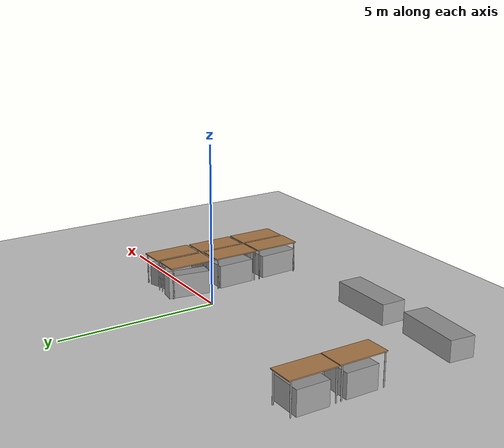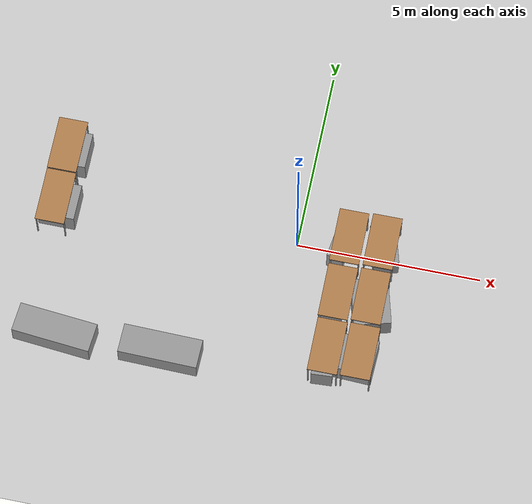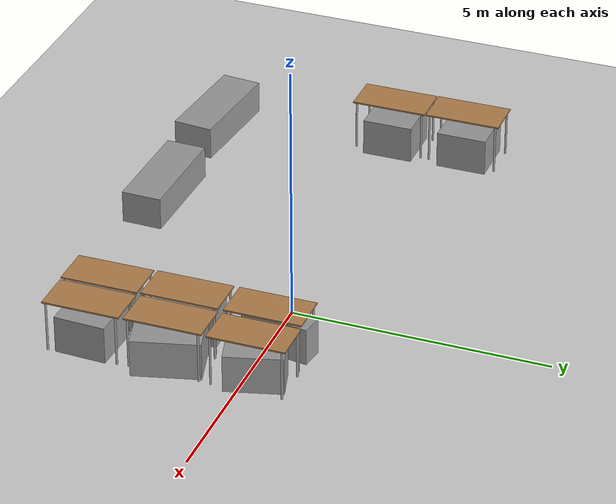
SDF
<sdf version="1.6">
 <world name="default">
  <model name="ground_plane">
   <static>1</static>
   <link name="link">
    <collision name="collision">
     <geometry><plane><normal>0 0 1</normal><size>100 100</size></plane></geometry>
     <surface><friction><ode><mu>100</mu><mu2>50</mu2></ode></friction></surface>
    </collision>
    <visual name="visual">
     <cast_shadows>0</cast_shadows>
     <geometry><plane><normal>0 0 1</normal><size>100 100</size></plane></geometry>
     <material>
      <script><uri>file://media/materials/scripts/gazebo.material</uri><name>Gazebo/Grey</name></script>
     </material>
    </visual>
   </link>
  </model>
  <model name="table">
   <static>1</static>
   <link name="link">
    <collision name="surface">
     <pose>0 0 1 0 -0 0</pose>
     <geometry><box><size>1.5 0.8 0.03</size></box></geometry>
     <surface><friction><ode><mu>0.6</mu><mu2>0.6</mu2></ode></friction></surface>
    </collision>
    <visual name="visual1">
     <pose>0 0 1 0 -0 0</pose>
     <geometry><box><size>1.5 0.8 0.03</size></box></geometry>
     <material>
      <script><uri>file://media/materials/scripts/gazebo.material</uri><name>Gazebo/Wood</name></script>
     </material>
    </visual>
    <collision name="front_left_leg">
     <pose>0.68 0.38 0.5 0 -0 0</pose>
     <geometry><cylinder><radius>0.02</radius><length>1</length></cylinder></geometry>
    </collision>
    <visual name="front_left_leg">
     <pose>0.68 0.38 0.5 0 -0 0</pose>
     <geometry><cylinder><radius>0.02</radius><length>1</length></cylinder></geometry>
     <material>
      <script><uri>file://media/materials/scripts/gazebo.material</uri><name>Gazebo/Grey</name></script>
     </material>
    </visual>
    <collision name="front_right_leg">
     <pose>0.68 -0.38 0.5 0 -0 0</pose>
     <geometry><cylinder><radius>0.02</radius><length>1</length></cylinder></geometry>
    </collision>
    <visual name="front_right_leg">
     <pose>0.68 -0.38 0.5 0 -0 0</pose>
     <geometry><cylinder><radius>0.02</radius><length>1</length></cylinder></geometry>
     <material>
      <script><uri>file://media/materials/scripts/gazebo.material</uri><name>Gazebo/Grey</name></script>
     </material>
    </visual>
    <collision name="back_right_leg">
     <pose>-0.68 -0.38 0.5 0 -0 0</pose>
     <geometry><cylinder><radius>0.02</radius><length>1</length></cylinder></geometry>
    </collision>
    <visual name="back_right_leg">
     <pose>-0.68 -0.38 0.5 0 -0 0</pose>
     <geometry><cylinder><radius>0.02</radius><length>1</length></cylinder></geometry>
     <material>
      <script><uri>file://media/materials/scripts/gazebo.material</uri><name>Gazebo/Grey</name></script>
     </material>
    </visual>
    <collision name="back_left_leg">
     <pose>-0.68 0.38 0.5 0 -0 0</pose>
     <geometry><cylinder><radius>0.02</radius><length>1</length></cylinder></geometry>
    </collision>
    <visual name="back_left_leg">
     <pose>-0.68 0.38 0.5 0 -0 0</pose>
     <geometry><cylinder><radius>0.02</radius><length>1</length></cylinder></geometry>
     <material>
      <script><uri>file://media/materials/scripts/gazebo.material</uri><name>Gazebo/Grey</name></script>
     </material>
    </visual>
   </link>
   <pose>2.29662 -3.01648 0 0 0 -1.56663</pose>
  </model>
  <model name="table_clone">
   <static>1</static>
   <link name="link">
    <collision name="surface">
     <pose>0 0 1 0 -0 0</pose>
     <geometry><box><size>1.5 0.8 0.03</size></box></geometry>
     <surface><friction><ode><mu>0.6</mu><mu2>0.6</mu2></ode></friction></surface>
    </collision>
    <visual name="visual1">
     <pose>0 0 1 0 -0 0</pose>
     <geometry><box><size>1.5 0.8 0.03</size></box></geometry>
     <material>
      <script><uri>file://media/materials/scripts/gazebo.material</uri><name>Gazebo/Wood</name></script>
     </material>
    </visual>
    <collision name="front_left_leg">
     <pose>0.68 0.38 0.5 0 -0 0</pose>
     <geometry><cylinder><radius>0.02</radius><length>1</length></cylinder></geometry>
    </collision>
    <visual name="front_left_leg">
     <pose>0.68 0.38 0.5 0 -0 0</pose>
     <geometry><cylinder><radius>0.02</radius><length>1</length></cylinder></geometry>
     <material>
      <script><uri>file://media/materials/scripts/gazebo.material</uri><name>Gazebo/Grey</name></script>
     </material>
    </visual>
    <collision name="front_right_leg">
     <pose>0.68 -0.38 0.5 0 -0 0</pose>
     <geometry><cylinder><radius>0.02</radius><length>1</length></cylinder></geometry>
    </collision>
    <visual name="front_right_leg">
     <pose>0.68 -0.38 0.5 0 -0 0</pose>
     <geometry><cylinder><radius>0.02</radius><length>1</length></cylinder></geometry>
     <material>
      <script><uri>file://media/materials/scripts/gazebo.material</uri><name>Gazebo/Grey</name></script>
     </material>
    </visual>
    <collision name="back_right_leg">
     <pose>-0.68 -0.38 0.5 0 -0 0</pose>
     <geometry><cylinder><radius>0.02</radius><length>1</length></cylinder></geometry>
    </collision>
    <visual name="back_right_leg">
     <pose>-0.68 -0.38 0.5 0 -0 0</pose>
     <geometry><cylinder><radius>0.02</radius><length>1</length></cylinder></geometry>
     <material>
      <script><uri>file://media/materials/scripts/gazebo.material</uri><name>Gazebo/Grey</name></script>
     </material>
    </visual>
    <collision name="back_left_leg">
     <pose>-0.68 0.38 0.5 0 -0 0</pose>
     <geometry><cylinder><radius>0.02</radius><length>1</length></cylinder></geometry>
    </collision>
    <visual name="back_left_leg">
     <pose>-0.68 0.38 0.5 0 -0 0</pose>
     <geometry><cylinder><radius>0.02</radius><length>1</length></cylinder></geometry>
     <material>
      <script><uri>file://media/materials/scripts/gazebo.material</uri><name>Gazebo/Grey</name></script>
     </material>
    </visual>
   </link>
   <pose>2.27339 -1.43135 0 0 0 -1.56663</pose>
  </model>
  <model name="table_clone_0">
   <static>1</static>
   <link name="link">
    <collision name="surface">
     <pose>0 0 1 0 -0 0</pose>
     <geometry><box><size>1.5 0.8 0.03</size></box></geometry>
     <surface><friction><ode><mu>0.6</mu><mu2>0.6</mu2></ode></friction></surface>
    </collision>
    <visual name="visual1">
     <pose>0 0 1 0 -0 0</pose>
     <geometry><box><size>1.5 0.8 0.03</size></box></geometry>
     <material>
      <script><uri>file://media/materials/scripts/gazebo.material</uri><name>Gazebo/Wood</name></script>
     </material>
    </visual>
    <collision name="front_left_leg">
     <pose>0.68 0.38 0.5 0 -0 0</pose>
     <geometry><cylinder><radius>0.02</radius><length>1</length></cylinder></geometry>
    </collision>
    <visual name="front_left_leg">
     <pose>0.68 0.38 0.5 0 -0 0</pose>
     <geometry><cylinder><radius>0.02</radius><length>1</length></cylinder></geometry>
     <material>
      <script><uri>file://media/materials/scripts/gazebo.material</uri><name>Gazebo/Grey</name></script>
     </material>
    </visual>
    <collision name="front_right_leg">
     <pose>0.68 -0.38 0.5 0 -0 0</pose>
     <geometry><cylinder><radius>0.02</radius><length>1</length></cylinder></geometry>
    </collision>
    <visual name="front_right_leg">
     <pose>0.68 -0.38 0.5 0 -0 0</pose>
     <geometry><cylinder><radius>0.02</radius><length>1</length></cylinder></geometry>
     <material>
      <script><uri>file://media/materials/scripts/gazebo.material</uri><name>Gazebo/Grey</name></script>
     </material>
    </visual>
    <collision name="back_right_leg">
     <pose>-0.68 -0.38 0.5 0 -0 0</pose>
     <geometry><cylinder><radius>0.02</radius><length>1</length></cylinder></geometry>
    </collision>
    <visual name="back_right_leg">
     <pose>-0.68 -0.38 0.5 0 -0 0</pose>
     <geometry><cylinder><radius>0.02</radius><length>1</length></cylinder></geometry>
     <material>
      <script><uri>file://media/materials/scripts/gazebo.material</uri><name>Gazebo/Grey</name></script>
     </material>
    </visual>
    <collision name="back_left_leg">
     <pose>-0.68 0.38 0.5 0 -0 0</pose>
     <geometry><cylinder><radius>0.02</radius><length>1</length></cylinder></geometry>
    </collision>
    <visual name="back_left_leg">
     <pose>-0.68 0.38 0.5 0 -0 0</pose>
     <geometry><cylinder><radius>0.02</radius><length>1</length></cylinder></geometry>
     <material>
      <script><uri>file://media/materials/scripts/gazebo.material</uri><name>Gazebo/Grey</name></script>
     </material>
    </visual>
   </link>
   <pose>2.28472 0.161965 0 0 0 -1.56663</pose>
  </model>
  <model name="table_clone_1">
   <static>1</static>
   <link name="link">
    <collision name="surface">
     <pose>0 0 1 0 -0 0</pose>
     <geometry><box><size>1.5 0.8 0.03</size></box></geometry>
     <surface><friction><ode><mu>0.6</mu><mu2>0.6</mu2></ode></friction></surface>
    </collision>
    <visual name="visual1">
     <pose>0 0 1 0 -0 0</pose>
     <geometry><box><size>1.5 0.8 0.03</size></box></geometry>
     <material>
      <script><uri>file://media/materials/scripts/gazebo.material</uri><name>Gazebo/Wood</name></script>
     </material>
    </visual>
    <collision name="front_left_leg">
     <pose>0.68 0.38 0.5 0 -0 0</pose>
     <geometry><cylinder><radius>0.02</radius><length>1</length></cylinder></geometry>
    </collision>
    <visual name="front_left_leg">
     <pose>0.68 0.38 0.5 0 -0 0</pose>
     <geometry><cylinder><radius>0.02</radius><length>1</length></cylinder></geometry>
     <material>
      <script><uri>file://media/materials/scripts/gazebo.material</uri><name>Gazebo/Grey</name></script>
     </material>
    </visual>
    <collision name="front_right_leg">
     <pose>0.68 -0.38 0.5 0 -0 0</pose>
     <geometry><cylinder><radius>0.02</radius><length>1</length></cylinder></geometry>
    </collision>
    <visual name="front_right_leg">
     <pose>0.68 -0.38 0.5 0 -0 0</pose>
     <geometry><cylinder><radius>0.02</radius><length>1</length></cylinder></geometry>
     <material>
      <script><uri>file://media/materials/scripts/gazebo.material</uri><name>Gazebo/Grey</name></script>
     </material>
    </visual>
    <collision name="back_right_leg">
     <pose>-0.68 -0.38 0.5 0 -0 0</pose>
     <geometry><cylinder><radius>0.02</radius><length>1</length></cylinder></geometry>
    </collision>
    <visual name="back_right_leg">
     <pose>-0.68 -0.38 0.5 0 -0 0</pose>
     <geometry><cylinder><radius>0.02</radius><length>1</length></cylinder></geometry>
     <material>
      <script><uri>file://media/materials/scripts/gazebo.material</uri><name>Gazebo/Grey</name></script>
     </material>
    </visual>
    <collision name="back_left_leg">
     <pose>-0.68 0.38 0.5 0 -0 0</pose>
     <geometry><cylinder><radius>0.02</radius><length>1</length></cylinder></geometry>
    </collision>
    <visual name="back_left_leg">
     <pose>-0.68 0.38 0.5 0 -0 0</pose>
     <geometry><cylinder><radius>0.02</radius><length>1</length></cylinder></geometry>
     <material>
      <script><uri>file://media/materials/scripts/gazebo.material</uri><name>Gazebo/Grey</name></script>
     </material>
    </visual>
   </link>
   <pose>1.41744 -3.04037 0 0 0 -1.56663</pose>
  </model>
  <model name="table_clone_2">
   <static>1</static>
   <link name="link">
    <collision name="surface">
     <pose>0 0 1 0 -0 0</pose>
     <geometry><box><size>1.5 0.8 0.03</size></box></geometry>
     <surface><friction><ode><mu>0.6</mu><mu2>0.6</mu2></ode></friction></surface>
    </collision>
    <visual name="visual1">
     <pose>0 0 1 0 -0 0</pose>
     <geometry><box><size>1.5 0.8 0.03</size></box></geometry>
     <material>
      <script><uri>file://media/materials/scripts/gazebo.material</uri><name>Gazebo/Wood</name></script>
     </material>
    </visual>
    <collision name="front_left_leg">
     <pose>0.68 0.38 0.5 0 -0 0</pose>
     <geometry><cylinder><radius>0.02</radius><length>1</length></cylinder></geometry>
    </collision>
    <visual name="front_left_leg">
     <pose>0.68 0.38 0.5 0 -0 0</pose>
     <geometry><cylinder><radius>0.02</radius><length>1</length></cylinder></geometry>
     <material>
      <script><uri>file://media/materials/scripts/gazebo.material</uri><name>Gazebo/Grey</name></script>
     </material>
    </visual>
    <collision name="front_right_leg">
     <pose>0.68 -0.38 0.5 0 -0 0</pose>
     <geometry><cylinder><radius>0.02</radius><length>1</length></cylinder></geometry>
    </collision>
    <visual name="front_right_leg">
     <pose>0.68 -0.38 0.5 0 -0 0</pose>
     <geometry><cylinder><radius>0.02</radius><length>1</length></cylinder></geometry>
     <material>
      <script><uri>file://media/materials/scripts/gazebo.material</uri><name>Gazebo/Grey</name></script>
     </material>
    </visual>
    <collision name="back_right_leg">
     <pose>-0.68 -0.38 0.5 0 -0 0</pose>
     <geometry><cylinder><radius>0.02</radius><length>1</length></cylinder></geometry>
    </collision>
    <visual name="back_right_leg">
     <pose>-0.68 -0.38 0.5 0 -0 0</pose>
     <geometry><cylinder><radius>0.02</radius><length>1</length></cylinder></geometry>
     <material>
      <script><uri>file://media/materials/scripts/gazebo.material</uri><name>Gazebo/Grey</name></script>
     </material>
    </visual>
    <collision name="back_left_leg">
     <pose>-0.68 0.38 0.5 0 -0 0</pose>
     <geometry><cylinder><radius>0.02</radius><length>1</length></cylinder></geometry>
    </collision>
    <visual name="back_left_leg">
     <pose>-0.68 0.38 0.5 0 -0 0</pose>
     <geometry><cylinder><radius>0.02</radius><length>1</length></cylinder></geometry>
     <material>
      <script><uri>file://media/materials/scripts/gazebo.material</uri><name>Gazebo/Grey</name></script>
     </material>
    </visual>
   </link>
   <pose>1.39274 -1.47675 0 0 0 -1.56663</pose>
  </model>
  <model name="table_clone_3">
   <static>1</static>
   <link name="link">
    <collision name="surface">
     <pose>0 0 1 0 -0 0</pose>
     <geometry><box><size>1.5 0.8 0.03</size></box></geometry>
     <surface><friction><ode><mu>0.6</mu><mu2>0.6</mu2></ode></friction></surface>
    </collision>
    <visual name="visual1">
     <pose>0 0 1 0 -0 0</pose>
     <geometry><box><size>1.5 0.8 0.03</size></box></geometry>
     <material>
      <script><uri>file://media/materials/scripts/gazebo.material</uri><name>Gazebo/Wood</name></script>
     </material>
    </visual>
    <collision name="front_left_leg">
     <pose>0.68 0.38 0.5 0 -0 0</pose>
     <geometry><cylinder><radius>0.02</radius><length>1</length></cylinder></geometry>
    </collision>
    <visual name="front_left_leg">
     <pose>0.68 0.38 0.5 0 -0 0</pose>
     <geometry><cylinder><radius>0.02</radius><length>1</length></cylinder></geometry>
     <material>
      <script><uri>file://media/materials/scripts/gazebo.material</uri><name>Gazebo/Grey</name></script>
     </material>
    </visual>
    <collision name="front_right_leg">
     <pose>0.68 -0.38 0.5 0 -0 0</pose>
     <geometry><cylinder><radius>0.02</radius><length>1</length></cylinder></geometry>
    </collision>
    <visual name="front_right_leg">
     <pose>0.68 -0.38 0.5 0 -0 0</pose>
     <geometry><cylinder><radius>0.02</radius><length>1</length></cylinder></geometry>
     <material>
      <script><uri>file://media/materials/scripts/gazebo.material</uri><name>Gazebo/Grey</name></script>
     </material>
    </visual>
    <collision name="back_right_leg">
     <pose>-0.68 -0.38 0.5 0 -0 0</pose>
     <geometry><cylinder><radius>0.02</radius><length>1</length></cylinder></geometry>
    </collision>
    <visual name="back_right_leg">
     <pose>-0.68 -0.38 0.5 0 -0 0</pose>
     <geometry><cylinder><radius>0.02</radius><length>1</length></cylinder></geometry>
     <material>
      <script><uri>file://media/materials/scripts/gazebo.material</uri><name>Gazebo/Grey</name></script>
     </material>
    </visual>
    <collision name="back_left_leg">
     <pose>-0.68 0.38 0.5 0 -0 0</pose>
     <geometry><cylinder><radius>0.02</radius><length>1</length></cylinder></geometry>
    </collision>
    <visual name="back_left_leg">
     <pose>-0.68 0.38 0.5 0 -0 0</pose>
     <geometry><cylinder><radius>0.02</radius><length>1</length></cylinder></geometry>
     <material>
      <script><uri>file://media/materials/scripts/gazebo.material</uri><name>Gazebo/Grey</name></script>
     </material>
    </visual>
   </link>
   <pose>1.38254 0.12604 0 0 0 -1.56663</pose>
  </model>
  <model name="table_clone_5">
   <static>1</static>
   <link name="link">
    <collision name="surface">
     <pose>0 0 1 0 -0 0</pose>
     <geometry><box><size>1.5 0.8 0.03</size></box></geometry>
     <surface><friction><ode><mu>0.6</mu><mu2>0.6</mu2></ode></friction></surface>
    </collision>
    <visual name="visual1">
     <pose>0 0 1 0 -0 0</pose>
     <geometry><box><size>1.5 0.8 0.03</size></box></geometry>
     <material>
      <script><uri>file://media/materials/scripts/gazebo.material</uri><name>Gazebo/Wood</name></script>
     </material>
    </visual>
    <collision name="front_left_leg">
     <pose>0.68 0.38 0.5 0 -0 0</pose>
     <geometry><cylinder><radius>0.02</radius><length>1</length></cylinder></geometry>
    </collision>
    <visual name="front_left_leg">
     <pose>0.68 0.38 0.5 0 -0 0</pose>
     <geometry><cylinder><radius>0.02</radius><length>1</length></cylinder></geometry>
     <material>
      <script><uri>file://media/materials/scripts/gazebo.material</uri><name>Gazebo/Grey</name></script>
     </material>
    </visual>
    <collision name="front_right_leg">
     <pose>0.68 -0.38 0.5 0 -0 0</pose>
     <geometry><cylinder><radius>0.02</radius><length>1</length></cylinder></geometry>
    </collision>
    <visual name="front_right_leg">
     <pose>0.68 -0.38 0.5 0 -0 0</pose>
     <geometry><cylinder><radius>0.02</radius><length>1</length></cylinder></geometry>
     <material>
      <script><uri>file://media/materials/scripts/gazebo.material</uri><name>Gazebo/Grey</name></script>
     </material>
    </visual>
    <collision name="back_right_leg">
     <pose>-0.68 -0.38 0.5 0 -0 0</pose>
     <geometry><cylinder><radius>0.02</radius><length>1</length></cylinder></geometry>
    </collision>
    <visual name="back_right_leg">
     <pose>-0.68 -0.38 0.5 0 -0 0</pose>
     <geometry><cylinder><radius>0.02</radius><length>1</length></cylinder></geometry>
     <material>
      <script><uri>file://media/materials/scripts/gazebo.material</uri><name>Gazebo/Grey</name></script>
     </material>
    </visual>
    <collision name="back_left_leg">
     <pose>-0.68 0.38 0.5 0 -0 0</pose>
     <geometry><cylinder><radius>0.02</radius><length>1</length></cylinder></geometry>
    </collision>
    <visual name="back_left_leg">
     <pose>-0.68 0.38 0.5 0 -0 0</pose>
     <geometry><cylinder><radius>0.02</radius><length>1</length></cylinder></geometry>
     <material>
      <script><uri>file://media/materials/scripts/gazebo.material</uri><name>Gazebo/Grey</name></script>
     </material>
    </visual>
   </link>
   <pose>-6.58125 1.20851 0 0 0 -1.56663</pose>
  </model>
  <model name="table_clone_6">
   <static>1</static>
   <link name="link">
    <collision name="surface">
     <pose>0 0 1 0 -0 0</pose>
     <geometry><box><size>1.5 0.8 0.03</size></box></geometry>
     <surface><friction><ode><mu>0.6</mu><mu2>0.6</mu2></ode></friction></surface>
    </collision>
    <visual name="visual1">
     <pose>0 0 1 0 -0 0</pose>
     <geometry><box><size>1.5 0.8 0.03</size></box></geometry>
     <material>
      <script><uri>file://media/materials/scripts/gazebo.material</uri><name>Gazebo/Wood</name></script>
     </material>
    </visual>
    <collision name="front_left_leg">
     <pose>0.68 0.38 0.5 0 -0 0</pose>
     <geometry><cylinder><radius>0.02</radius><length>1</length></cylinder></geometry>
    </collision>
    <visual name="front_left_leg">
     <pose>0.68 0.38 0.5 0 -0 0</pose>
     <geometry><cylinder><radius>0.02</radius><length>1</length></cylinder></geometry>
     <material>
      <script><uri>file://media/materials/scripts/gazebo.material</uri><name>Gazebo/Grey</name></script>
     </material>
    </visual>
    <collision name="front_right_leg">
     <pose>0.68 -0.38 0.5 0 -0 0</pose>
     <geometry><cylinder><radius>0.02</radius><length>1</length></cylinder></geometry>
    </collision>
    <visual name="front_right_leg">
     <pose>0.68 -0.38 0.5 0 -0 0</pose>
     <geometry><cylinder><radius>0.02</radius><length>1</length></cylinder></geometry>
     <material>
      <script><uri>file://media/materials/scripts/gazebo.material</uri><name>Gazebo/Grey</name></script>
     </material>
    </visual>
    <collision name="back_right_leg">
     <pose>-0.68 -0.38 0.5 0 -0 0</pose>
     <geometry><cylinder><radius>0.02</radius><length>1</length></cylinder></geometry>
    </collision>
    <visual name="back_right_leg">
     <pose>-0.68 -0.38 0.5 0 -0 0</pose>
     <geometry><cylinder><radius>0.02</radius><length>1</length></cylinder></geometry>
     <material>
      <script><uri>file://media/materials/scripts/gazebo.material</uri><name>Gazebo/Grey</name></script>
     </material>
    </visual>
    <collision name="back_left_leg">
     <pose>-0.68 0.38 0.5 0 -0 0</pose>
     <geometry><cylinder><radius>0.02</radius><length>1</length></cylinder></geometry>
    </collision>
    <visual name="back_left_leg">
     <pose>-0.68 0.38 0.5 0 -0 0</pose>
     <geometry><cylinder><radius>0.02</radius><length>1</length></cylinder></geometry>
     <material>
      <script><uri>file://media/materials/scripts/gazebo.material</uri><name>Gazebo/Grey</name></script>
     </material>
    </visual>
   </link>
   <pose>-6.56614 -0.321297 0 0 0 -1.56663</pose>
  </model>
  <model name="unit_box">
   <pose>2.33694 0.208894 0.369264 0 -0 0.271619</pose>
   <link name="link">
    <inertial>
     <mass>1</mass>
     <inertia>
      <ixx>0.166667</ixx>
      <ixy>0</ixy>
      <ixz>0</ixz>
      <iyy>0.166667</iyy>
      <iyz>0</iyz>
      <izz>0.166667</izz>
     </inertia>
    </inertial>
    <collision name="collision"><geometry><box><size>0.681188 1.10748 0.738528</size></box></geometry></collision>
    <visual name="visual">
     <geometry><box><size>0.681188 1.10748 0.738528</size></box></geometry>
     <material>
      <script><name>Gazebo/Grey</name><uri>file://media/materials/scripts/gazebo.material</uri></script>
     </material>
    </visual>
   </link>
  </model>
  <model name="unit_box_clone">
   <pose>2.28961 -1.46555 0.369264 0 -0 0.26125</pose>
   <link name="link">
    <inertial>
     <mass>1</mass>
     <inertia>
      <ixx>0.166667</ixx>
      <ixy>0</ixy>
      <ixz>0</ixz>
      <iyy>0.166667</iyy>
      <iyz>0</iyz>
      <izz>0.166667</izz>
     </inertia>
    </inertial>
    <collision name="collision"><geometry><box><size>1 1.29699 0.738528</size></box></geometry></collision>
    <visual name="visual">
     <geometry><box><size>1 1.29699 0.738528</size></box></geometry>
     <material>
      <script><name>Gazebo/Grey</name><uri>file://media/materials/scripts/gazebo.material</uri></script>
     </material>
    </visual>
   </link>
  </model>
  <model name="unit_box_clone_0">
   <pose>2.21484 -3.02056 0.369264 0 0 -0.040287</pose>
   <link name="link">
    <inertial>
     <mass>1</mass>
     <inertia>
      <ixx>0.166667</ixx>
      <ixy>0</ixy>
      <ixz>0</ixz>
      <iyy>0.166667</iyy>
      <iyz>0</iyz>
      <izz>0.166667</izz>
     </inertia>
    </inertial>
    <collision name="collision"><geometry><box><size>1 1 0.738528</size></box></geometry></collision>
    <visual name="visual">
     <geometry><box><size>1 1 0.738528</size></box></geometry>
     <material>
      <script><name>Gazebo/Grey</name><uri>file://media/materials/scripts/gazebo.material</uri></script>
     </material>
    </visual>
   </link>
  </model>
  <model name="unit_box_clone_1">
   <pose>-6.4744 -0.281213 0.369264 0 -0 0.000937</pose>
   <link name="link">
    <inertial>
     <mass>1</mass>
     <inertia>
      <ixx>0.166667</ixx>
      <ixy>0</ixy>
      <ixz>0</ixz>
      <iyy>0.166667</iyy>
      <iyz>0</iyz>
      <izz>0.166667</izz>
     </inertia>
    </inertial>
    <collision name="collision"><geometry><box><size>1 1 0.738528</size></box></geometry></collision>
    <visual name="visual">
     <geometry><box><size>1 1 0.738528</size></box></geometry>
     <material>
      <script><name>Gazebo/Grey</name><uri>file://media/materials/scripts/gazebo.material</uri></script>
     </material>
    </visual>
   </link>
  </model>
  <model name="unit_box_clone_2">
   <pose>-6.5173 1.25452 0.369264 0 -0 0.000103</pose>
   <link name="link">
    <inertial>
     <mass>1</mass>
     <inertia>
      <ixx>0.166667</ixx>
      <ixy>0</ixy>
      <ixz>0</ixz>
      <iyy>0.166667</iyy>
      <iyz>0</iyz>
      <izz>0.166667</izz>
     </inertia>
    </inertial>
    <collision name="collision"><geometry><box><size>1 1 0.738528</size></box></geometry></collision>
    <visual name="visual">
     <geometry><box><size>1 1 0.738528</size></box></geometry>
     <material>
      <script><name>Gazebo/Grey</name><uri>file://media/materials/scripts/gazebo.material</uri></script>
     </material>
    </visual>
   </link>
  </model>
  <model name="unit_box_clone_10">
   <pose>1.19094 0.226039 0.369264 -0 -0 -0.14199</pose>
   <link name="link">
    <inertial>
     <mass>1</mass>
     <inertia>
      <ixx>0.166667</ixx>
      <ixy>0</ixy>
      <ixz>0</ixz>
      <iyy>0.166667</iyy>
      <iyz>0</iyz>
      <izz>0.166667</izz>
     </inertia>
    </inertial>
    <collision name="collision"><geometry><box><size>0.443661 1.34374 0.738528</size></box></geometry></collision>
    <visual name="visual">
     <geometry><box><size>0.443661 1.34374 0.738528</size></box></geometry>
     <material>
      <script><name>Gazebo/Grey</name><uri>file://media/materials/scripts/gazebo.material</uri></script>
     </material>
    </visual>
   </link>
  </model>
  <model name="unit_box_clone_11">
   <pose>1.29928 -1.48104 0.369264 0 -0 0.035153</pose>
   <link name="link">
    <inertial>
     <mass>1</mass>
     <inertia>
      <ixx>0.166667</ixx>
      <ixy>0</ixy>
      <ixz>0</ixz>
      <iyy>0.166667</iyy>
      <iyz>0</iyz>
      <izz>0.166667</izz>
     </inertia>
    </inertial>
    <collision name="collision"><geometry><box><size>0.56365 1.21705 0.738528</size></box></geometry></collision>
    <visual name="visual">
     <geometry><box><size>0.56365 1.21705 0.738528</size></box></geometry>
     <material>
      <script><name>Gazebo/Grey</name><uri>file://media/materials/scripts/gazebo.material</uri></script>
     </material>
    </visual>
   </link>
  </model>
  <model name="unit_box_clone_12">
   <pose>1.37353 -3.13739 0.369264 0 -0 0.058807</pose>
   <link name="link">
    <inertial>
     <mass>1</mass>
     <inertia>
      <ixx>0.166667</ixx>
      <ixy>0</ixy>
      <ixz>0</ixz>
      <iyy>0.166667</iyy>
      <iyz>0</iyz>
      <izz>0.166667</izz>
     </inertia>
    </inertial>
    <collision name="collision"><geometry><box><size>0.567943 1.29337 0.738528</size></box></geometry></collision>
    <visual name="visual">
     <geometry><box><size>0.567943 1.29337 0.738528</size></box></geometry>
     <material>
      <script><name>Gazebo/Grey</name><uri>file://media/materials/scripts/gazebo.material</uri></script>
     </material>
    </visual>
   </link>
  </model>
  <model name="unit_box_0">
   <pose>-5.79589 -3.85996 0.32652 6e-06 -3e-06 -0.090645</pose>
   <link name="link">
    <inertial>
     <mass>1</mass>
     <inertia>
      <ixx>0.166667</ixx>
      <ixy>0</ixy>
      <ixz>0</ixz>
      <iyy>0.166667</iyy>
      <iyz>0</iyz>
      <izz>0.166667</izz>
     </inertia>
    </inertial>
    <collision name="collision"><geometry><box><size>2.13947 0.797655 0.65305</size></box></geometry></collision>
    <visual name="visual">
     <geometry><box><size>2.13947 0.797655 0.65305</size></box></geometry>
     <material>
      <script><name>Gazebo/Grey</name><uri>file://media/materials/scripts/gazebo.material</uri></script>
     </material>
    </visual>
   </link>
  </model>
  <model name="unit_box_0_clone">
   <pose>-2.93476 -3.80559 0.326525 0 0 -0.019098</pose>
   <link name="link">
    <inertial>
     <mass>1</mass>
     <inertia>
      <ixx>0.166667</ixx>
      <ixy>0</ixy>
      <ixz>0</ixz>
      <iyy>0.166667</iyy>
      <iyz>0</iyz>
      <izz>0.166667</izz>
     </inertia>
    </inertial>
    <collision name="collision"><geometry><box><size>2.13947 0.797655 0.65305</size></box></geometry></collision>
    <visual name="visual">
     <geometry><box><size>2.13947 0.797655 0.65305</size></box></geometry>
     <material>
      <script><name>Gazebo/Grey</name><uri>file://media/materials/scripts/gazebo.material</uri></script>
     </material>
    </visual>
   </link>
  </model>
 </world>
</sdf>
